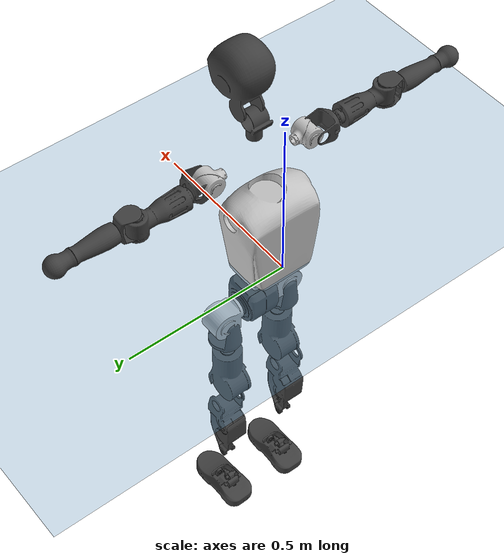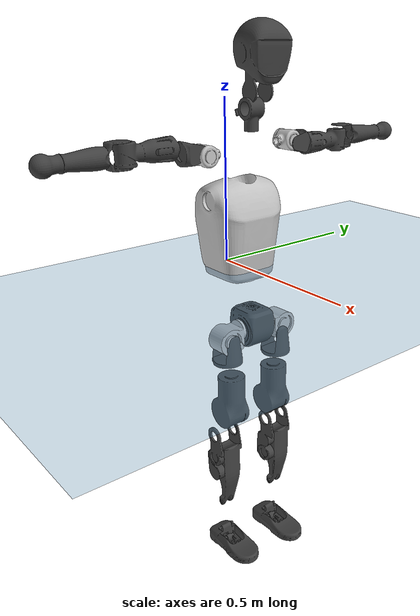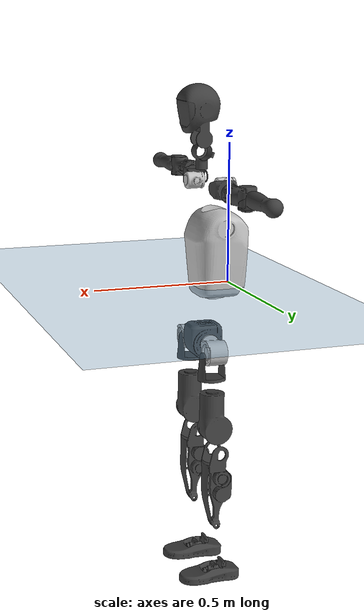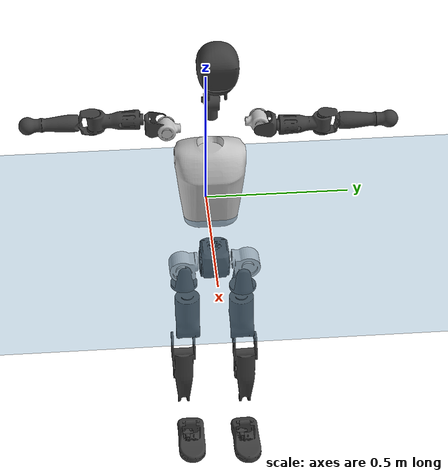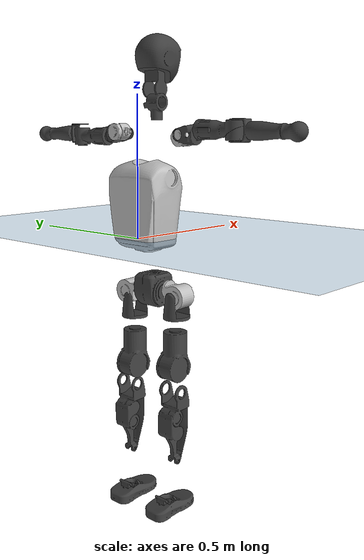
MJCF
<mujoco model="T1">
  <compiler angle="radian" assetdir="assets" balanceinertia="true" inertiafromgeom="false"/>

  <option timestep="0.005" density="1.2" viscosity="2e-05"/>

  <size nkey="1"/>

  <visual>
    <quality shadowsize="8192"/>
    <map shadowclip="0.5"/>
  </visual>

  <default>
    <default class="/">
      <joint armature="0.01" damping="0.01" frictionloss="0.1"/>
      <geom contype="0" conaffinity="0" group="1" solref="-1000 -80"/>
      <site size="0.01 0.005 0.005" group="5"/>
      <general forcelimited="true" biastype="affine" gainprm="25" biasprm="0 -25 -0.6"/>
      <default class="t1">
        <geom rgba="0.25 0.25 0.25 1"/>
        <default class="visual">
          <geom type="mesh" group="2"/>
        </default>
        <default class="collision">
          <geom group="3"/>
        </default>
        <default class="foot">
          <geom size="0.1115 0.05 0.015" type="box" condim="6" group="4" priority="1" solimp="0.015 1 0.015"/>
        </default>
        <default class="reward_collision_sphere">
          <geom group="5" rgba="1 0 0 1"/>
        </default>
      </default>
    </default>
  </default>

  <asset>
    <texture type="skybox" colorspace="auto" name="//unnamed_texture_0" builtin="gradient" rgb1="0.95 0.95 0.95" rgb2="0.95 0.95 0.95" width="100" height="600"/>
    <texture type="2d" colorspace="auto" name="texplane" builtin="checker" rgb1="0.345 0.575 0.748" rgb2="0.345 0.575 0.748" markrgb="1 1 1" width="512" height="512"/>
    <material name="MatPlane" class="/" texture="texplane" texuniform="true" texrepeat="2 2" specular="0.9"/>
    <mesh name="Trunk" class="/" file="Trunk.stl"/>
    <mesh name="H1" class="/" file="H1.stl"/>
    <mesh name="H2" class="/" file="H2.stl"/>
    <mesh name="AL1" class="/" file="AL1.stl"/>
    <mesh name="AL2" class="/" file="AL2.stl"/>
    <mesh name="AL3" class="/" file="AL3.stl"/>
    <mesh name="left_hand_link" class="/" file="left_hand_link.stl"/>
    <mesh name="AR1" class="/" file="AR1.stl"/>
    <mesh name="AR2" class="/" file="AR2.stl"/>
    <mesh name="AR3" class="/" file="AR3.stl"/>
    <mesh name="right_hand_link" class="/" file="right_hand_link.stl"/>
    <mesh name="Waist" class="/" file="Waist.stl"/>
    <mesh name="Hip_Pitch_Left" class="/" file="Hip_Pitch_Left.stl"/>
    <mesh name="Hip_Roll_Left" class="/" file="Hip_Roll_Left.stl"/>
    <mesh name="Hip_Yaw_Left" class="/" file="Hip_Yaw_Left.stl"/>
    <mesh name="Shank_Left" class="/" file="Shank_Left.stl"/>
    <mesh name="Ankle_Cross_Left" class="/" file="Ankle_Cross_Left.stl"/>
    <mesh name="left_foot_link" class="/" file="left_foot_link.stl"/>
    <mesh name="Hip_Pitch_Right" class="/" file="Hip_Pitch_Right.stl"/>
    <mesh name="Hip_Roll_Right" class="/" file="Hip_Roll_Right.stl"/>
    <mesh name="Hip_Yaw_Right" class="/" file="Hip_Yaw_Right.stl"/>
    <mesh name="Shank_Right" class="/" file="Shank_Right.stl"/>
    <mesh name="Ankle_Cross_Right" class="/" file="Ankle_Cross_Right.stl"/>
    <mesh name="right_foot_link" class="/" file="right_foot_link.stl"/>
  </asset>

  <worldbody>
    <geom name="floor" class="/" size="100 100 0.125" type="plane" group="0" material="MatPlane"/>
    <light name="toplight_shadow" class="/" pos="0 0 5" dir="0.0990148 0.0990148 -0.990148" type="directional" ambient="0.04 0.04 0.04" diffuse="0.55 0.55 0.55" specular="0.12 0.12 0.12"/>
    <light name="toplight_fill" class="/" pos="0 0 5" dir="0.0990148 0.0990148 -0.990148" type="directional" castshadow="false" ambient="0.04 0.04 0.04" diffuse="0.3 0.3 0.3" specular="0.08 0.08 0.08"/>
    <body name="trunk" childclass="t1" pos="0.000791547 0.00883044 -0.0021919" quat="0.999983 -0.00201659 -0.00495978 0.00231075">
      <inertial pos="0.084292 0.00694197 0.173452" quat="0.998208 -0.0303301 -0.0153507 -0.0492403" mass="34.8095" diaginertia="0.622615 0.120731 0.547173"/>
      <joint name="//unnamed_joint_0" type="free" armature="0" damping="0" frictionloss="0"/>
      <geom name="//unnamed_geom_1" class="visual" rgba="0.76 0.76 0.76 1" mesh="Trunk"/>
      <geom name="//unnamed_geom_2" class="collision" size="0.108356 0.144474 0.216711" pos="0.0954037 0 0.197089" type="box"/>
      <geom name="//unnamed_geom_3" class="reward_collision_sphere" size="0.166145" pos="0.0954037 0 0.164241"/>
      <geom name="//unnamed_geom_4" class="reward_collision_sphere" size="0.0216711" pos="0.0954037 0.0936493 0"/>
      <geom name="//unnamed_geom_5" class="reward_collision_sphere" size="0.0216711" pos="0.0954037 -0.0936493 0"/>
      <geom name="//unnamed_geom_6" class="reward_collision_sphere" size="0.0216711" pos="0.0954037 0.117888 0.295633"/>
      <geom name="//unnamed_geom_7" class="reward_collision_sphere" size="0.0216711" pos="0.0954037 -0.117888 0.295633"/>
      <site name="imu" pos="-0.0565326 0.000917294 0.0557235" size="0.0144474"/>
      <camera name="track" pos="0 -2.20351 0" quat="0.707107 0.707107 0 0" mode="trackcom"/>
      <camera name="ego_camera" pos="0.193988 0 0.689811" quat="-0.5 -0.5 0.5 0.5"/>
      <body name="H1" pos="0.111802 -0.000335179 0.413843" quat="1 5.4999e-05 2.60348e-05 0.000180185">
        <inertial pos="-0.00113324 0.000688577 0.0950083" quat="0.765554 -0.0145407 0.0024583 0.643203" mass="1.30968" diaginertia="0.00280338 0.000341422 0.00177671"/>
        <joint name="AAHead_yaw" pos="0 0 0" axis="-9.20886e-07 0.0202492 0.999795" range="-1.79551 1.53775" armature="0.00381708" damping="0" frictionloss="0.0430194"/>
        <geom name="//unnamed_geom_8" class="visual" mesh="H1"/>
        <body name="H2" pos="0.00787086 0.0167506 0.107104" quat="0.999993 -0.00103278 -0.00319873 -0.00151171">
          <inertial pos="-8.41327e-05 0.0142754 0.177787" quat="0.980958 0.120347 -0.0641369 -0.138294" mass="1.66855" diaginertia="0.0193898 0.00365253 0.0200957"/>
          <joint name="Head_pitch" pos="0 0 0" axis="-0.0202635 -0.999455 -0.0260729" range="-1.28759 0.458179" armature="0.00692816" damping="0.076932" frictionloss="0.119811"/>
          <geom name="//unnamed_geom_9" class="visual" mesh="H2"/>
          <geom name="//unnamed_geom_10" class="collision" size="0.115579" pos="0.0159006 0 0.180665"/>
          <geom name="//unnamed_geom_11" class="reward_collision_sphere" size="0.130027" pos="0.0318012 0 0.164241"/>
        </body>
      </body>
      <body name="AL1" pos="0.0869218 0.116419 0.374311" quat="0.999972 -0.00215477 -0.00154573 0.00703513">
        <inertial pos="0.00926075 0.0466593 0.00240699" quat="0.504583 0.494048 -0.507622 0.493591" mass="1.76676" diaginertia="0.0153862 0.00278363 0.00453525"/>
        <joint name="Left_Shoulder_Pitch" pos="0 0 0" axis="0.0212399 0.998351 0.0533323" range="-3.11866 0.91607" armature="0.013872" damping="0.0779892" frictionloss="0.0790407"/>
        <geom name="//unnamed_geom_12" class="visual" rgba="0.76 0.76 0.76 1" mesh="AL1"/>
        <body name="AL2" pos="0.0139921 0.0447896 -0.00677789" quat="1 6.27602e-05 -6.32973e-06 -2.593e-05">
          <inertial pos="0.0139845 0.0273223 0.00859093" quat="0.477215 0.527203 -0.484419 0.509571" mass="0.436171" diaginertia="0.00350837 0.000461407 0.00206062"/>
          <joint name="Left_Shoulder_Roll" pos="0 0 0" axis="-0.999818 -0.0155672 0.0110686" stiffness="0.0831775" range="-1.74454 1.69658" armature="0.00371888" damping="0.000735393" frictionloss="0.150536"/>
          <geom name="//unnamed_geom_13" class="visual" mesh="AL2"/>
          <body name="AL3" pos="-0.00650862 0.068738 -0.00923677" quat="0.999997 -6.80589e-05 -0.000661699 -0.00244182">
            <inertial pos="-0.0136119 0.108639 -0.00752013" quat="0.688671 0.723938 0.0359237 -0.0188599" mass="4.17587" diaginertia="0.126352 0.0234497 0.00980796"/>
            <joint name="Left_Elbow_Pitch" pos="0 0 0" axis="-0.0317102 -0.999103 -0.0280646" stiffness="0.0380668" range="-1.96135 2.41989" armature="0.0027839" damping="0.0288834" frictionloss="0.153482"/>
            <geom name="//unnamed_geom_14" class="visual" mesh="AL3"/>
            <geom name="//unnamed_geom_15" class="collision" size="0.0433423 0.108356" pos="0 0.0550878 0" quat="0.707105 0.707108 0 0" type="cylinder"/>
            <geom name="//unnamed_geom_16" class="reward_collision_sphere" size="0.0520107"/>
            <body name="left_hand_link" pos="0.00523338 0.157834 0.0105218" quat="0.999971 -0.00316655 0.00177614 -0.00663423">
              <inertial pos="0.0153615 0.112993 -0.000307651" quat="0.714058 0.699646 -0.0230284 0.0093191" mass="0.981272" diaginertia="0.0961382 0.0118099 0.00210196"/>
              <joint name="Left_Elbow_Yaw" pos="0 0 0" axis="-0.000133955 0.00414284 0.999991" range="-2.39715 0.313325" armature="0.0171606" damping="0" frictionloss="0.138317"/>
              <geom name="//unnamed_geom_17" class="visual" mesh="left_hand_link"/>
              <geom name="//unnamed_geom_18" class="collision" size="0.0433423 0.126415" pos="0 0.143228 0" quat="0.707105 0.707108 0 0" type="cylinder"/>
              <geom name="//unnamed_geom_19" class="reward_collision_sphere" size="0.0722371"/>
              <geom name="//unnamed_geom_20" class="reward_collision_sphere" size="0.050566" pos="0 0.121193 0"/>
              <geom name="//unnamed_geom_21" class="reward_collision_sphere" size="0.050566" pos="0 0.236878 0"/>
            </body>
          </body>
        </body>
      </body>
      <body name="AR1" pos="0.0842614 -0.103047 0.355924" quat="0.999995 -0.0014956 -0.00290863 -0.000302327">
        <inertial pos="0.00919358 -0.0330418 0.00525086" quat="0.469457 0.529001 -0.513611 0.485768" mass="1.71334" diaginertia="0.0178914 0.00250196 0.00368849"/>
        <joint name="Right_Shoulder_Pitch" pos="0 0 0" axis="0.0447474 -0.997806 0.0487847" stiffness="0.0815556" range="-1.24536 3.49129" armature="0.00481484" damping="0.0473022" frictionloss="0.205532"/>
        <geom name="//unnamed_geom_22" class="visual" rgba="0.76 0.76 0.76 1" mesh="AR1"/>
        <body name="AR2" pos="-0.0156145 -0.0623174 0.0096595" quat="0.999975 0.00674681 -0.00167834 -0.00124033">
          <inertial pos="0.0165415 -0.0432237 0.00704413" quat="0.502815 0.487526 -0.488956 0.520017" mass="0.572947" diaginertia="0.0041269 0.000465431 0.00226242"/>
          <joint name="Right_Shoulder_Roll" pos="0 0 0" axis="-0.999782 0.0129698 -0.0163831" stiffness="0.0122823" range="-1.88091 1.43817" armature="0.0146102" damping="0" frictionloss="0.0249226"/>
          <geom name="//unnamed_geom_23" class="visual" mesh="AR2"/>
          <body name="AR3" pos="-0.00980393 -0.0736399 0.0168208" quat="1 4.20226e-05 -4.66544e-06 3.00719e-05">
            <inertial pos="-0.0016663 -0.0798367 0.00779148" quat="0.67508 0.736013 0.0503877 0.00358581" mass="3.06682" diaginertia="0.129616 0.0221458 0.00617519"/>
            <joint name="Right_Elbow_Pitch" pos="0 0 0" axis="-0.0296755 0.997681 -0.0612581" range="-1.99706 2.46504" armature="0.0254096" damping="0" frictionloss="0.0684914"/>
            <geom name="//unnamed_geom_24" class="visual" mesh="AR3"/>
            <geom name="//unnamed_geom_25" class="collision" size="0.0433423 0.108356" pos="0 -0.0550878 0" quat="0.707105 0.707108 0 0" type="cylinder"/>
            <geom name="//unnamed_geom_26" class="reward_collision_sphere" size="0.0520107"/>
            <body name="right_hand_link" pos="-0.000485682 -0.159312 -0.000918782" quat="0.99998 0.00330549 0.00116124 0.00525162">
              <inertial pos="-0.00205151 -0.11234 -0.0133765" quat="0.707532 0.706681 0.000549492 5.86138e-05" mass="1.14789" diaginertia="0.0950622 0.0142064 0.00282809"/>
              <joint name="Right_Elbow_Yaw" pos="0 0 0" axis="-0.0312122 0.0399799 0.998713" range="0.04034 2.22743" armature="0.00399547" damping="0.0910321" frictionloss="0.0611544"/>
              <geom name="//unnamed_geom_27" class="visual" mesh="right_hand_link"/>
              <geom name="//unnamed_geom_28" class="collision" size="0.0433423 0.126415" pos="0 -0.143228 0" quat="0.707105 0.707108 0 0" type="cylinder"/>
              <geom name="//unnamed_geom_29" class="reward_collision_sphere" size="0.0722371"/>
              <geom name="//unnamed_geom_30" class="reward_collision_sphere" size="0.050566" pos="0 -0.121193 0"/>
              <geom name="//unnamed_geom_31" class="reward_collision_sphere" size="0.050566" pos="0 -0.236878 0"/>
            </body>
          </body>
        </body>
      </body>
      <body name="Waist" pos="0.10095 0.0129009 -0.205246" quat="1 0.000153381 0.000235727 -1.64461e-05">
        <inertial pos="0.0176423 0.00475293 0.00805197" quat="0.972689 0.00205026 -0.22776 -0.0446933" mass="9.46867" diaginertia="0.0627538 0.0106747 0.0681864"/>
        <joint name="Waist" pos="0 0 0" axis="-0.0278439 -0.0628244 0.997636" stiffness="0.047268" range="-1.65909 1.85037" armature="0.0137797" damping="0" frictionloss="0.0477808"/>
        <geom name="//unnamed_geom_32" class="visual" mesh="Waist"/>
        <body name="Hip_Pitch_Left" pos="-0.00180389 0.117673 0.0044177" quat="0.99999 6.73708e-05 -0.00424636 0.00108055">
          <inertial pos="0.00377482 0.000345986 -0.0275231" quat="0.971733 0.235984 -0.00345073 -0.00593114" mass="2.68038" diaginertia="0.0182213 0.0018857 0.0130984"/>
          <joint name="Left_Hip_Pitch" pos="0 0 0" axis="0.0832932 0.996463 0.0111524" stiffness="0.076733" range="-1.78245 1.26484" armature="0.00830488" damping="0.0693298" frictionloss="0.153301"/>
          <geom name="//unnamed_geom_33" class="visual" rgba="0.76 0.76 0.76 1" mesh="Hip_Pitch_Left"/>
          <body name="Hip_Roll_Left" pos="0.00616155 -0.0168773 -0.0459422" quat="0.999966 0.00592095 0.00122949 0.0055421">
            <inertial pos="0.0142237 -0.000473589 -0.0925062" quat="0.721919 0.00689077 -0.0256854 0.691466" mass="1.47187" diaginertia="0.017461 0.00288504 0.00740939"/>
            <joint name="Left_Hip_Roll" pos="0 0 0" axis="-0.99712 -0.0260041 0.0712443" range="-1.72365 0.213175" armature="0.0207722" damping="0.023839" frictionloss="0.176583"/>
            <geom name="//unnamed_geom_34" class="visual" mesh="Hip_Roll_Left"/>
            <geom name="//unnamed_geom_35" class="reward_collision_sphere" size="0.0794608"/>
            <body name="Hip_Yaw_Left" pos="-0.00745958 -0.00367047 -0.126716" quat="1 -0.000144089 -0.000448939 -0.000180954">
              <inertial pos="-0.0137155 -0.00552034 -0.145525" quat="0.717771 -0.0981237 -0.049058 0.687582" mass="8.44203" diaginertia="0.259719 0.0506073 0.0365168"/>
              <joint name="Left_Hip_Yaw" pos="0 0 0" axis="0.00570121 -0.00424956 -0.999975" range="-0.770829 1.02057" armature="0.0141403" damping="0" frictionloss="0.12544"/>
              <geom name="//unnamed_geom_36" class="visual" mesh="Hip_Yaw_Left"/>
              <geom name="//unnamed_geom_37" class="collision" size="0.0722371 0.115579" type="cylinder"/>
              <body name="Shank_Left" pos="-0.0155426 0.0140982 -0.221068" quat="1 7.77517e-05 0.000126647 6.86446e-05">
                <inertial pos="-0.00224627 0.0122772 -0.201826" quat="0.99723 0.0581444 -0.0288049 0.0363674" mass="4.03515" diaginertia="0.310762 0.0497275 0.0229643"/>
                <joint name="Left_Knee_Pitch" pos="0 0 0" axis="0.0191786 0.999438 -0.0274846" range="-0.14222 2.51581" armature="0.00499528" damping="0.0685411" frictionloss="0.182344"/>
                <geom name="//unnamed_geom_38" class="visual" mesh="Shank_Left"/>
                <geom name="//unnamed_geom_39" class="collision" size="0.0722371 0.108356" pos="0 0 -0.197089" type="cylinder"/>
                <geom name="//unnamed_geom_40" class="reward_collision_sphere" size="0.0939082"/>
                <body name="Ankle_Cross_Left" pos="-0.000430709 -0.0113475 -0.447065" quat="0.999975 -0.00219706 -0.00133809 0.00655085">
                  <inertial pos="0.00252535 0.0158104 -0.00968656" quat="0.448855 0.565975 0.503328 0.474197" mass="0.226442" diaginertia="0.000302411 3.53614e-05 0.000118711"/>
                  <joint name="Left_Ankle_Pitch" pos="0 0 0" axis="-0.0037012 0.998641 -0.0519861" stiffness="0.0265444" range="-0.962112 0.22392" armature="0.0189714" damping="0.0183979" frictionloss="0.125707"/>
                  <geom name="//unnamed_geom_41" class="visual" mesh="Ankle_Cross_Left"/>
                  <body name="left_foot_link" pos="0.0129448 0.0155149 -0.0133324" quat="1 1.42334e-05 -3.77379e-05 -4.37335e-05">
                    <inertial pos="-0.0140182 0.00207032 -0.0312254" quat="-0.0167255 0.616257 0.01999 0.787113" mass="2.12971" diaginertia="0.0309542 0.00391176 0.0303579"/>
                    <joint name="Left_Ankle_Roll" pos="0 0 0" axis="-0.999999 -0.000886392 -0.00133468" range="-0.435527 0.435706" armature="0.0251313" damping="0.0601842" frictionloss="0.148671"/>
                    <geom name="//unnamed_geom_42" class="visual" mesh="left_foot_link"/>
                    <geom name="left_foot" class="foot" size="0.13177 0.100926 0.0171358" pos="0.0159006 0 -0.0246361"/>
                    <geom name="//unnamed_geom_44" class="reward_collision_sphere" size="0.0751266" pos="0.0159006 0 -0.0246361"/>
                    <geom name="//unnamed_geom_45" class="reward_collision_sphere" size="0.0433423" pos="0.151056 -0.0253404 -0.0246361"/>
                    <geom name="//unnamed_geom_46" class="reward_collision_sphere" size="0.0433423" pos="-0.111304 -0.0253404 -0.0246361"/>
                    <site name="left_foot" class="foot" pos="0.0159006 0 -0.0246361" size="0.0144474"/>
                  </body>
                </body>
              </body>
            </body>
          </body>
        </body>
        <body name="Hip_Pitch_Right" pos="0.0122885 -0.117045 0.0105838" quat="0.999967 0.00565499 -0.00577165 0.000162329">
          <inertial pos="0.00498384 0.0252213 -0.0305511" quat="0.970419 -0.239145 -0.0331032 0.00028067" mass="3.18145" diaginertia="0.0217451 0.00274687 0.0191344"/>
          <joint name="Right_Hip_Pitch" pos="0 0 0" axis="-3.98344e-06 -1 6.42231e-05" stiffness="0.0332637" range="-1.33929 1.81495" armature="0.0205926" damping="0.00400357" frictionloss="0.0332341"/>
          <geom name="//unnamed_geom_47" class="visual" rgba="0.76 0.76 0.76 1" mesh="Hip_Pitch_Right"/>
          <body name="Hip_Roll_Right" pos="-0.00399753 0.00730456 -0.0254875" quat="1 -2.44868e-05 -9.18784e-07 8.88672e-05">
            <inertial pos="0.0160754 -0.0161959 -0.0726637" quat="0.728495 -0.00188649 0.0194814 0.684771" mass="1.09023" diaginertia="0.0162814 0.00239458 0.00600283"/>
            <joint name="Right_Hip_Roll" pos="0 0 0" axis="-0.999994 -0.000429031 -0.00351652" range="-0.142734 1.57626" armature="0.00857609" damping="0" frictionloss="0.120887"/>
            <geom name="//unnamed_geom_48" class="visual" mesh="Hip_Roll_Right"/>
            <geom name="//unnamed_geom_49" class="reward_collision_sphere" size="0.0794608"/>
            <body name="Hip_Yaw_Right" pos="0.00179845 0.0105831 -0.130372" quat="0.999992 -0.00381296 0.000488839 -0.00130408">
              <inertial pos="-0.0217101 0.0104284 -0.151624" quat="0.712294 -0.0350042 -0.0335275 0.700206" mass="6.67233" diaginertia="0.222274 0.040956 0.0296246"/>
              <joint name="Right_Hip_Yaw" pos="0 0 0" axis="0.00222717 -0.00669135 -0.999975" stiffness="0.0124767" range="-0.918926 1.26096" armature="0.0265902" damping="0" frictionloss="0.0382769"/>
              <geom name="//unnamed_geom_50" class="visual" mesh="Hip_Yaw_Right"/>
              <geom name="//unnamed_geom_51" class="collision" size="0.0722371 0.115579" type="cylinder"/>
              <body name="Shank_Right" pos="-0.0293126 -0.0149462 -0.22409" quat="0.999975 0.00072241 -0.00398711 -0.00579105">
                <inertial pos="-0.0104759 -0.0123021 -0.216872" quat="0.997404 -0.00235729 -0.0719699 -0.000284002" mass="6.20798" diaginertia="0.400002 0.0581402 0.0185216"/>
                <joint name="Right_Knee_Pitch" pos="0 0 0" axis="-0.00265446 -0.997704 -0.067675" stiffness="0.00150512" range="-2.60283 0.255371" armature="0.0174525" damping="0" frictionloss="0.196395"/>
                <geom name="//unnamed_geom_52" class="visual" mesh="Shank_Right"/>
                <geom name="//unnamed_geom_53" class="collision" size="0.0722371 0.108356" pos="0 0 -0.197089" type="cylinder"/>
                <geom name="//unnamed_geom_54" class="reward_collision_sphere" size="0.0939082"/>
                <body name="Ankle_Cross_Right" pos="-0.00919938 0.0132133 -0.461367" quat="0.999964 -0.00161814 -0.0078263 -0.00275883">
                  <inertial pos="0.00118575 0.00686309 -0.0251772" quat="0.407008 0.549375 0.557349 0.471056" mass="0.21448" diaginertia="0.000273192 4.17256e-05 0.000156882"/>
                  <joint name="Right_Ankle_Pitch" pos="0 0 0" axis="-0.0252869 -0.999376 -0.0246506" stiffness="0.020026" range="-0.0880519 0.817968" armature="0.012796" damping="0.00562412" frictionloss="0.170319"/>
                  <geom name="//unnamed_geom_55" class="visual" mesh="Ankle_Cross_Right"/>
                  <body name="right_foot_link" pos="0.00620588 0.0137344 -0.0110733" quat="0.999997 4.21414e-05 0.00098508 0.00214101">
                    <inertial pos="0.00155675 -0.00671247 -0.00213546" quat="-0.0200786 0.625942 0.0159895 0.779447" mass="2.24827" diaginertia="0.0267136 0.0038611 0.0298801"/>
                    <joint name="Right_Ankle_Roll" pos="0 0 0" axis="-0.99843 -0.0519005 -0.0210483" stiffness="0.0518316" range="-0.777428 0.456461" armature="0.00438145" damping="0.0083043" frictionloss="0.225802"/>
                    <geom name="//unnamed_geom_56" class="visual" mesh="right_foot_link"/>
                    <geom name="right_foot" class="foot" size="0.166842 0.101266 0.020731" pos="0.0159006 0 -0.0246361"/>
                    <geom name="//unnamed_geom_58" class="reward_collision_sphere" size="0.0577897"/>
                    <geom name="//unnamed_geom_59" class="reward_collision_sphere" size="0.0433423" pos="0.0159006 0 -0.0246361"/>
                    <geom name="//unnamed_geom_60" class="reward_collision_sphere" size="0.0433423" pos="0.151056 0.0253404 -0.0246361"/>
                    <geom name="//unnamed_geom_61" class="reward_collision_sphere" size="0.0433423" pos="-0.111304 0.0253404 -0.0246361"/>
                    <site name="right_foot" class="foot" pos="0.0159006 0 -0.0246361" size="0.0144474"/>
                  </body>
                </body>
              </body>
            </body>
          </body>
        </body>
      </body>
    </body>
  </worldbody>

  <contact>
    <pair class="/" geom1="floor" geom2="left_foot" name="//unnamed_contact_0"/>
    <pair class="/" geom1="floor" geom2="right_foot" name="//unnamed_contact_1"/>
  </contact>

  <actuator>
    <general name="AAHead_yaw" class="/" joint="AAHead_yaw" forcerange="-13.8315 13.8315" gainprm="39.6611" biasprm="0 -39.6611 -0.935761"/>
    <general name="Head_pitch" class="/" joint="Head_pitch" forcerange="-5.9513 5.9513" gainprm="39.6611" biasprm="0 -39.6611 -0.935761"/>
    <general name="Left_Shoulder_Pitch" class="/" joint="Left_Shoulder_Pitch" forcerange="-29.5999 29.5999" gainprm="39.6611" biasprm="0 -39.6611 -0.935761"/>
    <general name="Left_Shoulder_Roll" class="/" joint="Left_Shoulder_Roll" forcerange="-12.8667 12.8667" gainprm="39.6611" biasprm="0 -39.6611 -0.935761"/>
    <general name="Left_Elbow_Pitch" class="/" joint="Left_Elbow_Pitch" forcerange="-29.0859 29.0859" gainprm="39.6611" biasprm="0 -39.6611 -0.935761"/>
    <general name="Left_Elbow_Yaw" class="/" joint="Left_Elbow_Yaw" forcerange="-26.2902 26.2902" gainprm="39.6611" biasprm="0 -39.6611 -0.935761"/>
    <general name="Right_Shoulder_Pitch" class="/" joint="Right_Shoulder_Pitch" forcerange="-26.6038 26.6038" gainprm="39.6611" biasprm="0 -39.6611 -0.935761"/>
    <general name="Right_Shoulder_Roll" class="/" joint="Right_Shoulder_Roll" forcerange="-32.7749 32.7749" gainprm="39.6611" biasprm="0 -39.6611 -0.935761"/>
    <general name="Right_Elbow_Pitch" class="/" joint="Right_Elbow_Pitch" forcerange="-21.4989 21.4989" gainprm="39.6611" biasprm="0 -39.6611 -0.935761"/>
    <general name="Right_Elbow_Yaw" class="/" joint="Right_Elbow_Yaw" forcerange="-30.735 30.735" gainprm="39.6611" biasprm="0 -39.6611 -0.935761"/>
    <general name="Waist" class="/" joint="Waist" forcerange="-65.3914 65.3914" gainprm="39.6611" biasprm="0 -39.6611 -0.935761"/>
    <general name="Left_Hip_Pitch" class="/" joint="Left_Hip_Pitch" forcerange="-80.8116 80.8116" gainprm="39.6611" biasprm="0 -39.6611 -0.935761"/>
    <general name="Left_Hip_Roll" class="/" joint="Left_Hip_Roll" forcerange="-45.0365 45.0365" gainprm="39.6611" biasprm="0 -39.6611 -0.935761"/>
    <general name="Left_Hip_Yaw" class="/" joint="Left_Hip_Yaw" forcerange="-50.8705 50.8705" gainprm="39.6611" biasprm="0 -39.6611 -0.935761"/>
    <general name="Left_Knee_Pitch" class="/" joint="Left_Knee_Pitch" forcerange="-127.988 127.988" gainprm="39.6611" biasprm="0 -39.6611 -0.935761"/>
    <general name="Left_Ankle_Pitch" class="/" joint="Left_Ankle_Pitch" forcerange="-11.5566 11.5566" gainprm="39.6611" biasprm="0 -39.6611 -0.935761"/>
    <general name="Left_Ankle_Roll" class="/" joint="Left_Ankle_Roll" forcerange="-35.3106 35.3106" gainprm="39.6611" biasprm="0 -39.6611 -0.935761"/>
    <general name="Right_Hip_Pitch" class="/" joint="Right_Hip_Pitch" forcerange="-67.98 67.98" gainprm="39.6611" biasprm="0 -39.6611 -0.935761"/>
    <general name="Right_Hip_Roll" class="/" joint="Right_Hip_Roll" forcerange="-64.097 64.097" gainprm="39.6611" biasprm="0 -39.6611 -0.935761"/>
    <general name="Right_Hip_Yaw" class="/" joint="Right_Hip_Yaw" forcerange="-19.4586 19.4586" gainprm="39.6611" biasprm="0 -39.6611 -0.935761"/>
    <general name="Right_Knee_Pitch" class="/" joint="Right_Knee_Pitch" forcerange="-68.2359 68.2359" gainprm="39.6611" biasprm="0 -39.6611 -0.935761"/>
    <general name="Right_Ankle_Pitch" class="/" joint="Right_Ankle_Pitch" forcerange="-28.3983 28.3983" gainprm="39.6611" biasprm="0 -39.6611 -0.935761"/>
    <general name="Right_Ankle_Roll" class="/" joint="Right_Ankle_Roll" forcerange="-21.5966 21.5966" gainprm="39.6611" biasprm="0 -39.6611 -0.935761"/>
  </actuator>

  <sensor>
    <gyro site="imu" name="imu_angular_velocity"/>
    <velocimeter site="imu" name="imu_linear_velocity"/>
    <framelinvel objtype="site" objname="left_foot" name="left_foot_global_linear_velocity"/>
    <framelinvel objtype="site" objname="right_foot" name="right_foot_global_linear_velocity"/>
  </sensor>

  <keyframe>
    <key name="home" qpos="0 0 0.6385 1 0 0 0 0 0 0 1.4 0 -0.4 0 -1.4 0 0.4 0 -0.4 0 0 0.8 -0.4 0 0.4 0 0 -0.8 0.4 0"/>
  </keyframe>
</mujoco>
